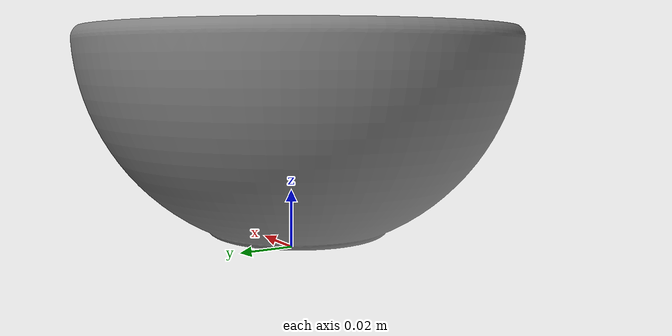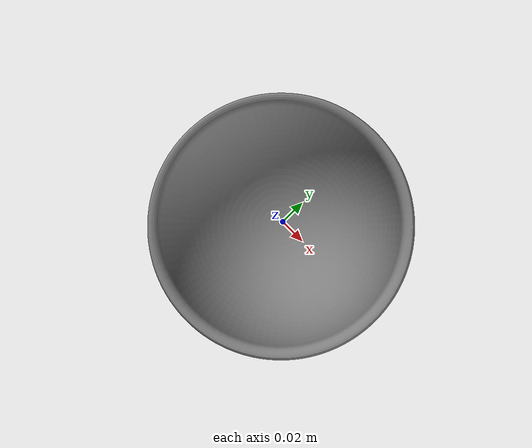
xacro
<?xml version="1.0"?>
<robot xmlns:xacro="http://ros.org/wiki/xacro" name="simple_bowl">

  <!-- Define the mesh path and the scale as properties -->
  <xacro:property name="bowl_mesh" value="$(find frida_description)/urdf/meshes/TMR2025/cereal_bowl.stl"/>
  <xacro:property name="mesh_scale" value="0.001 0.001 0.001"/>  <!-- Scale property -->

  <link name="bowl_link">

    <!-- Visual using STL -->
    <visual>
      <geometry>
        <mesh filename="file://${bowl_mesh}" scale="${mesh_scale}"/>  <!-- Use the scale property -->
      </geometry>
      <material name="gray">
        <color rgba="0.5 0.5 0.5 1"/>
      </material>
    </visual>

    <!-- Collision using the same mesh -->
    <collision>
      <geometry>
        <mesh filename="file://${bowl_mesh}" scale="${mesh_scale}"/>  <!-- Use the scale property -->
      </geometry>
    </collision>

    <!-- Inertial properties -->
    <inertial>
      <mass value="1.0"/>
      <origin xyz="0 0 0" rpy="0 0 0"/>
      <inertia
        ixx="0.001" ixy="0.0" ixz="0.0"
        iyy="0.001" iyz="0.0"
        izz="0.001"/>
    </inertial>

  </link>

  <!-- Gazebo Material -->
  <gazebo reference="bowl_link">
    <material>Gazebo/Yellow</material>
  </gazebo>

</robot>
